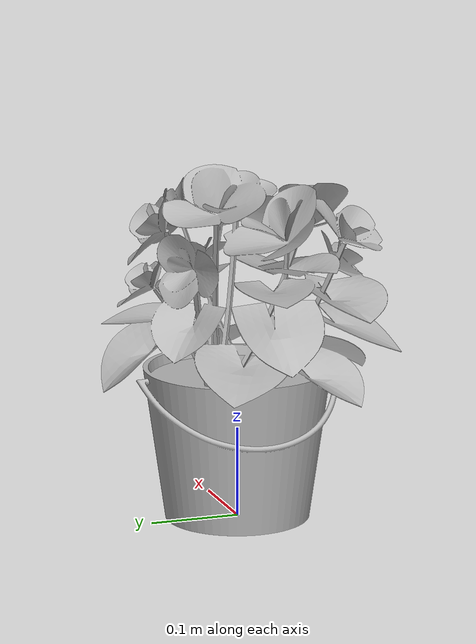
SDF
<?xml version="1.0"?>
<sdf version="1.7">
  <model name="potted_plant_v1">
    <static>true</static>
    <link name="link">
      <pose>0 0 0 0 0 0</pose>
      <visual name="visual">
        <geometry>
          <mesh>
            <uri>model://potted_plant_v1/Begonia_v3_L3.123ce64489bf-c1e4-4eec-bd98-f34221d4d83d/10435_Begonia_v3_L3.obj</uri>
            <scale>0.01 0.01 0.01</scale>
          </mesh>
        </geometry>
      </visual>
      <collision name="collision">
        <pose>-0.0073 -0.0046 0.2032 0 0 0</pose>
        <geometry>
          <box>
            <size>0.36 0.33 0.41</size>
          </box>
        </geometry>
      </collision>
    </link>
  </model>
</sdf>
